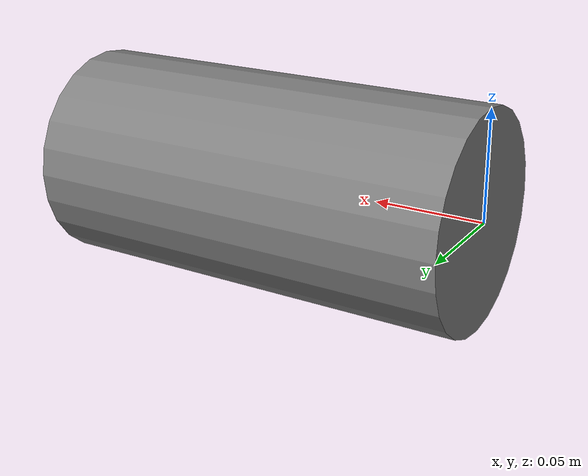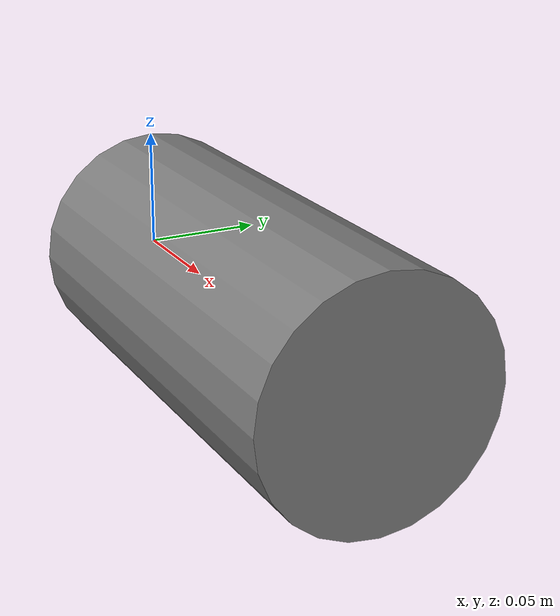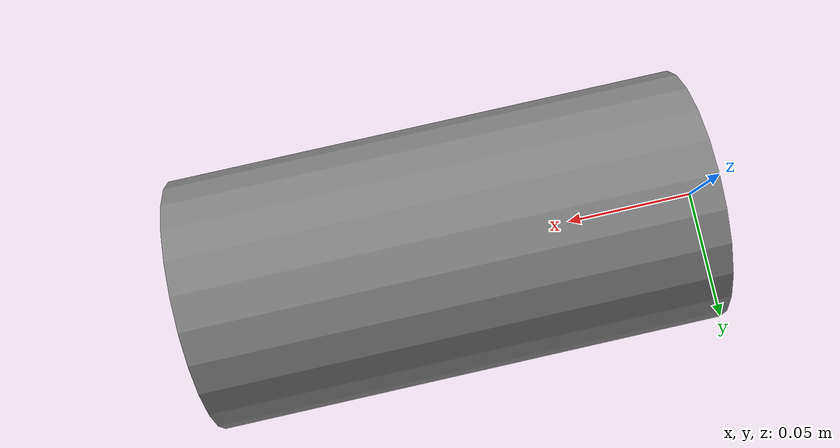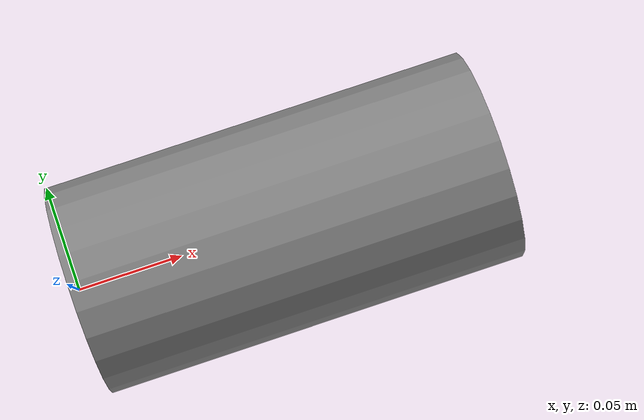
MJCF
<mujoco>
    <option timestep="0.002" />

    <!-- visual -->
    <visual>
        <global offwidth="2560" offheight="1440" />
    </visual>

    <worldbody>
        <!-- light -->
        <light name="light" pos="0 0 1" directional="true" castshadow="false" />

        <!-- ground -->

        <!-- camera -->

        <!-- arm -->
        <body>
            <geom type="cylinder" size="0.05" fromto="0 0 0 0.2 0 0" />
            <joint name="j0" type="hinge" axis="0 0 1" />
        </body>

    </worldbody>

    <!-- actuator -->
    <actuator>
        <position name="j0" joint="j0" />
    </actuator>

</mujoco>
